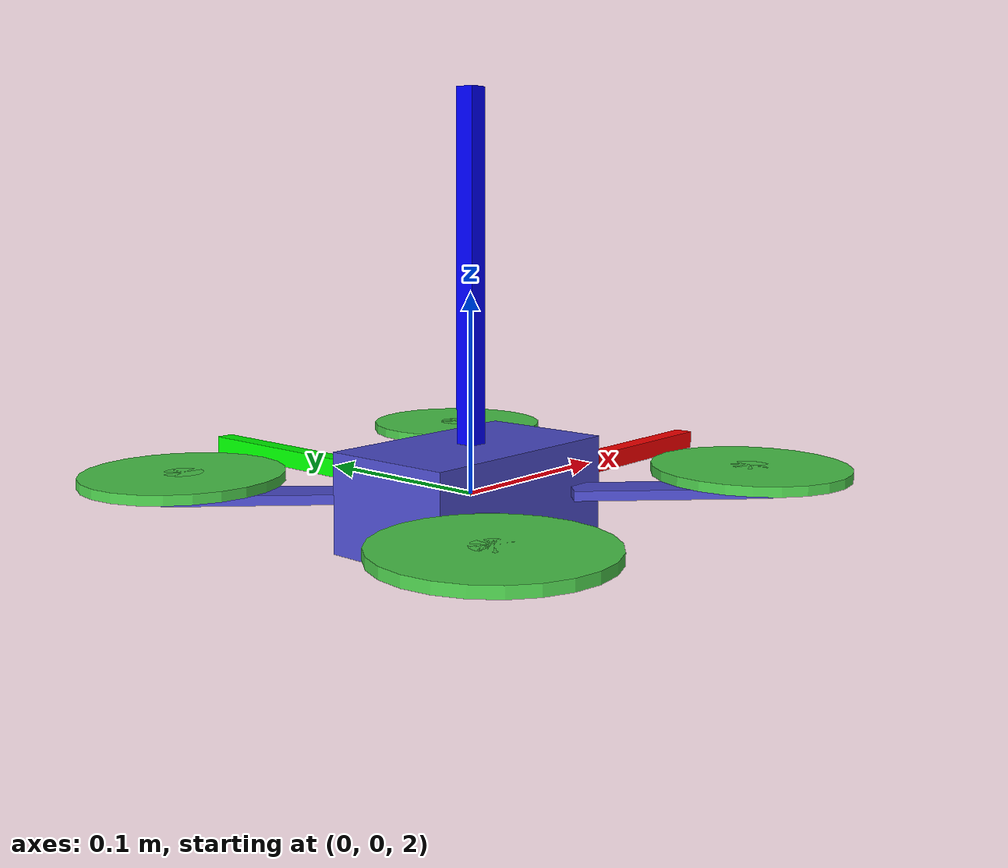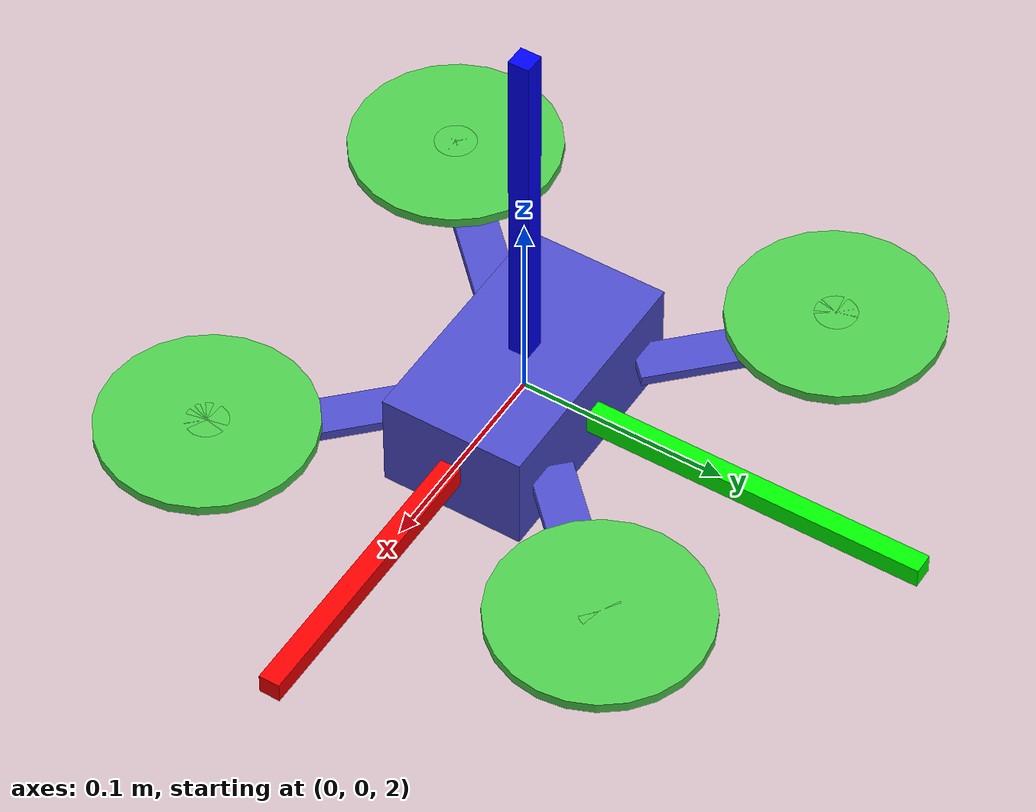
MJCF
<mujoco model="quadrotor0">
	<compiler inertiafromgeom="true" coordinate="local"/>
	<option	timestep="0.01" gravity="0 0 -9.81" density="1" viscosity="1e-5" />
	<visual> <map znear="0.00009" /> </visual>
	<worldbody>
		<geom name="floor" pos="0 0 0" size="2 2 .2" type="plane"  conaffinity="1" rgba="0.75 0.75 0.75 1" condim="3"/>
		<body name="quadrotor" pos="0 0 2" >
			<camera name="onbody_cam" mode="fixed" pos="0 0.08 0.05" xyaxes="1 0 0 0 0 1" fovy='35'/>
			<geom name="core" type="box" pos="0 0 0" quat = "1. 0. 0. 0" size="0.06 0.035 0.025"  rgba="0.3 0.3 0.8 1" mass = ".1"/>

			<geom name="a00" type="box" pos=".071 0.071 0.0" size="0.05 0.01 0.0025"  quat = ".924 0.0 0.0 0.383" rgba="0.3 0.3 0.8 1" mass = ".025"/>
			<geom name="a10" type="box" pos=".071 -0.071 0.0" size="0.05 0.01 0.0025"  quat = ".383 0.0 0.0 0.924" rgba="0.3 0.3 0.8 1" mass = ".025"/>
			<geom name="a20" type="box" pos="-0.071 -0.071 0.0" size="0.05 0.01 0.0025"  quat = "-.383 0.0 0.0 0.924" rgba="0.3 0.3 0.8 1" mass = ".025"/>
			<geom name="a30" type="box" pos="-.071 0.071 0.0" size="0.05 0.01 0.0025"  quat = ".924 0.0 0.0 -0.383" rgba="0.3 0.3 0.8 1" mass = ".025"/>

			<joint name="root"   type="free" damping="0" armature="0" pos="0 0 0" />

			<!-- Motor sites to attach motor actuators -->
            <site name="motor0" type="cylinder" pos=" 0.1  0.1 0.01"  size="0.01 0.0025"  quat = "1.0 0.0 0.0 0." rgba="0.3 0.8 0.3 1"/>
            <site name="motor1" type="cylinder" pos=" 0.1 -0.1 0.01"  size="0.01 0.0025"  quat = "1.0 0.0 0.0 0." rgba="0.3 0.8 0.3 1"/>
            <site name="motor2" type="cylinder" pos="-0.1 -0.1 0.01"  size="0.01 0.0025"  quat = "1.0 0.0 0.0 0." rgba="0.3 0.8 0.3 1"/>
            <site name="motor3" type="cylinder" pos="-0.1  0.1 0.01"  size="0.01 0.0025"  quat = "1.0 0.0 0.0 0." rgba="0.3 0.8 0.3 1"/>

			<!-- Thruster geometries for collisions since site's are excluded from collision checking -->
            <geom name="thruster0" type="cylinder" pos=" 0.1  0.1  0.01" size="0.05 0.0025"  quat = "1.0 0.0 0.0 0." rgba="0.3 0.8 0.3 1" mass = ".025"/>
            <geom name="thruster1" type="cylinder" pos=" 0.1 -0.1  0.01" size="0.05 0.0025"  quat = "1.0 0.0 0.0 0." rgba="0.3 0.8 0.3 1" mass = ".025"/>
            <geom name="thruster2" type="cylinder" pos="-0.1 -0.1  0.01" size="0.05 0.0025"  quat = "1.0 0.0 0.0 0." rgba="0.3 0.8 0.3 1" mass = ".025"/>
            <geom name="thruster3" type="cylinder" pos="-0.1  0.1  0.01" size="0.05 0.0025"  quat = "1.0 0.0 0.0 0." rgba="0.3 0.8 0.3 1" mass = ".025"/>

            <!-- Visualization of the coordinate frame -->
			<site name="qcX" type="box" pos="0.1 0.0 0.0" size="0.1 0.005 0.005"  quat = " 1.000  0.0  0.0    0."     rgba="1 0 0 1" />
			<site name="qcY" type="box" pos="0.0 0.1 0.0" size="0.1 0.005 0.005"  quat = " 0.707  0.0  0.0    0.707"  rgba="0 1 0 1" />
			<site name="qcZ" type="box" pos="0.0 0.0 0.1" size="0.1 0.005 0.005"  quat = "-0.707  0.0  0.707  0."     rgba="0 0 1 1" />
		</body>
		<light cutoff="100" diffuse="1 1 1" dir="0 0 -1" directional="true" exponent="1" pos="0 0 10" specular=".1 .1 .1" />
		<light cutoff="100" diffuse="1 1 1" dir="0 0 1" directional="true" exponent="1" pos="0 0 0.25" specular=".1 .1 .1" />
	</worldbody>
    <actuator>
        <motor ctrllimited="true" ctrlrange="0.0 1.0" gear="0  0. 1. 0. 0. -0.1" site="motor0"/>
        <motor ctrllimited="true" ctrlrange="0.0 1.0" gear="0  0. 1. 0. 0.  0.1" site="motor1"/>
        <motor ctrllimited="true" ctrlrange="0.0 1.0" gear="0  0. 1. 0. 0. -0.1" site="motor2"/>
        <motor ctrllimited="true" ctrlrange="0.0 1.0" gear="0  0. 1. 0. 0.  0.1" site="motor3"/>
	</actuator>
</mujoco>
